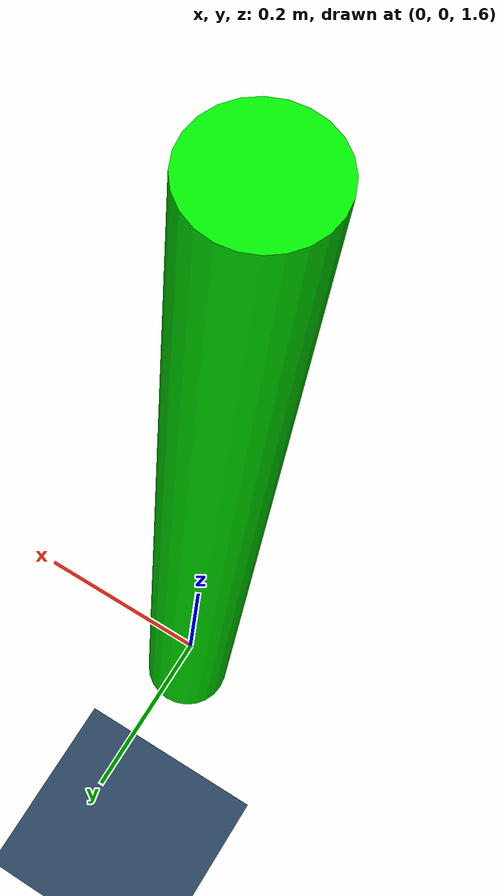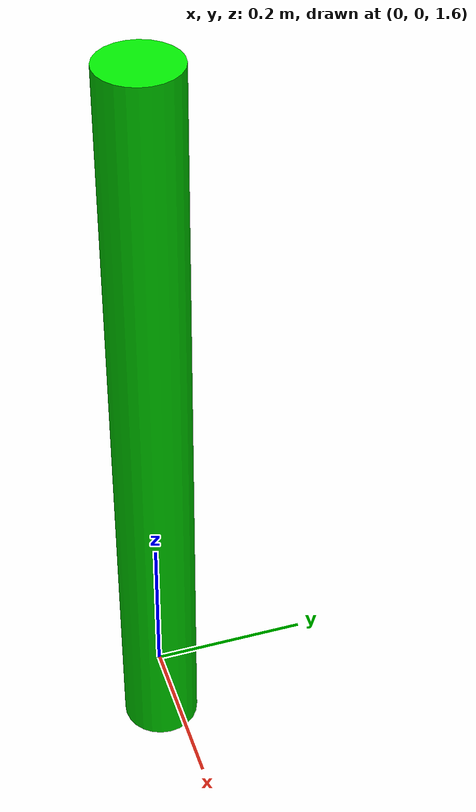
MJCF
<mujoco>
    <option timestep="0.01" integrator="RK4" gravity="0 0 -9.81">
        <flag gravity="enable" sensornoise="enable"/>
    </option>
    <visual>
        <rgba haze="0.5 0.5 0.5 1"/>
        <global offwidth="1920" offheight="1080" elevation="-20" azimuth="120"/>
    </visual>
    <asset>
        <texture type="skybox" builtin="gradient" rgb1="0.4 0.6 0.8" rgb2="0 0 0" width="32" height="512"/>
        <texture name="grid" type="2d" builtin="checker" rgb1="0.2 0.3 0.4" rgb2="0.1 0.2 0.3" width="512" height="512"/>
        <material name="grid" texture="grid" texrepeat="1 1" texuniform="true" reflectance="0.2"/>
      </asset>
    <worldbody>
        <geom name="floor" size="0 0 0.01" type="plane" material="grid" condim="1" solref="1 0.1"/>
        <light name="floorlight" mode="fixed" pos="0 0 50" dir="0 0 -1" diffuse="0.8 0.8 0.8" specular="0.3 0.3 0.3"/>
        <body pos="0 0 2" euler="0 180 0">
            <joint name="pin" type="hinge" axis="0 -1 0" pos="0 0 0.5"/>
            <geom type="cylinder" size=".05 .5" rgba="0 .9 0 1" mass="1"/>
            <camera name="fixed" pos="0 -.6 .3" xyaxes="1 0 0 0 1 2"/>
            <camera name="track" pos="0 -3 1" xyaxes="1 0 0 0 1 2" mode="track"/>
        </body>
    </worldbody>
    <actuator>
        <motor joint="pin" name="torque" gear="1" ctrllimited="true" ctrlrange="-100 100" />
        <position name="position_servo" joint="pin" kp="10" />
        <velocity name="velocity_servo" joint="pin" kv="0" />
    </actuator>
    <sensor>
        <jointpos joint="pin" noise="0.2" />
        <jointvel joint="pin" noise="1" />
    </sensor>
</mujoco>
